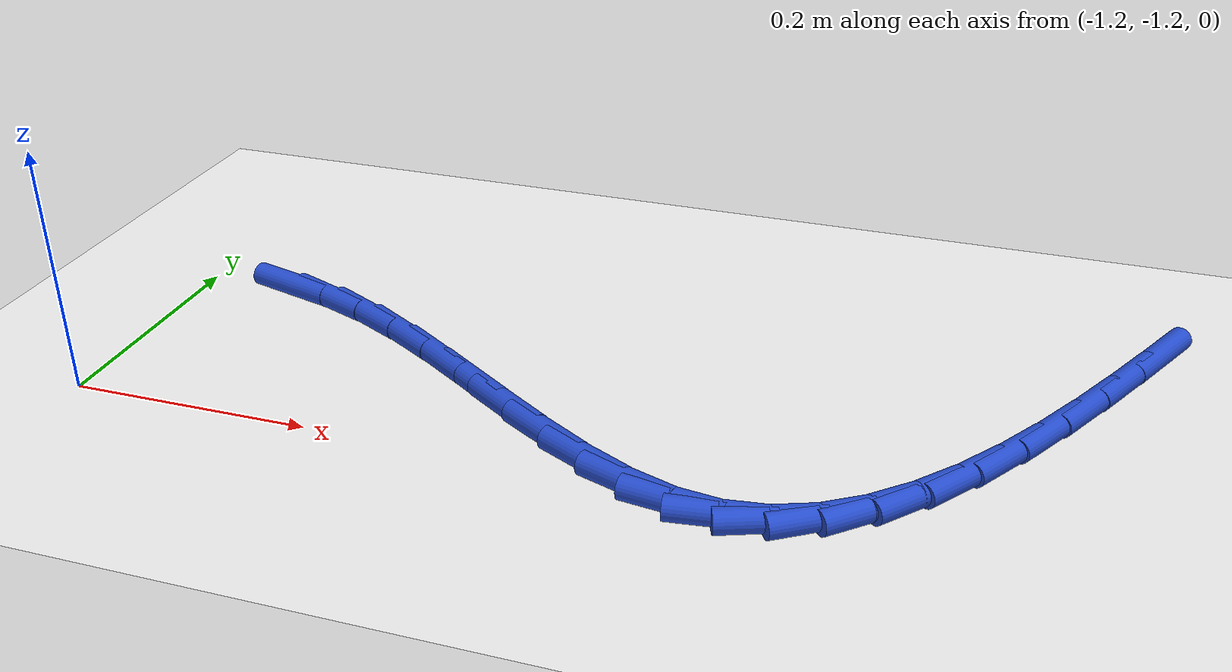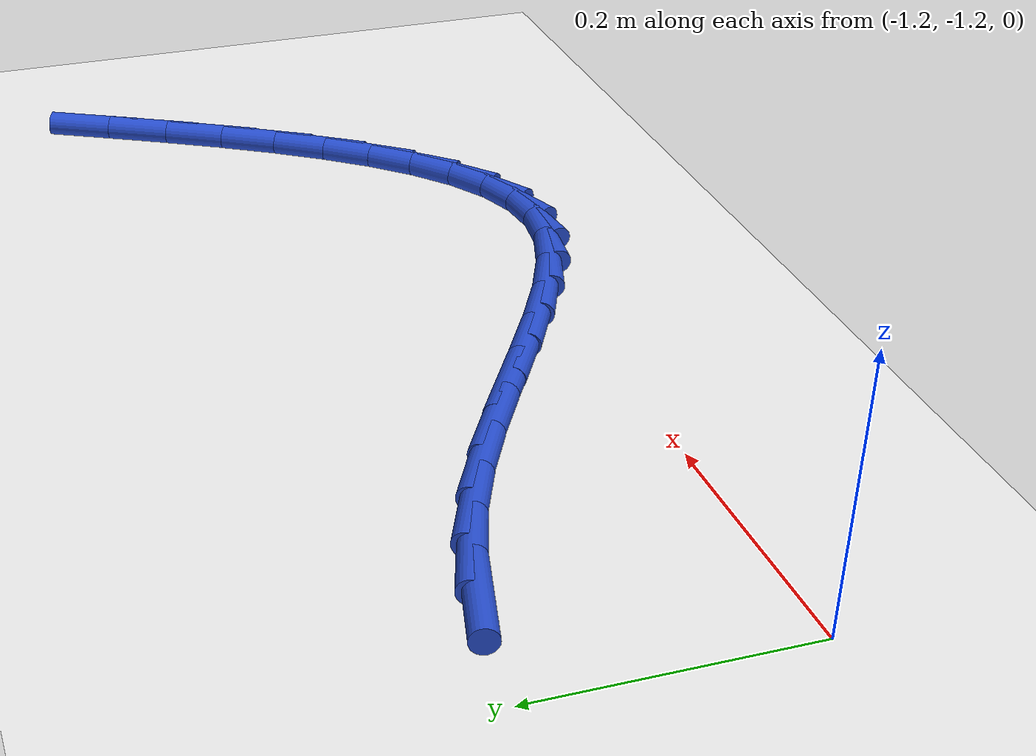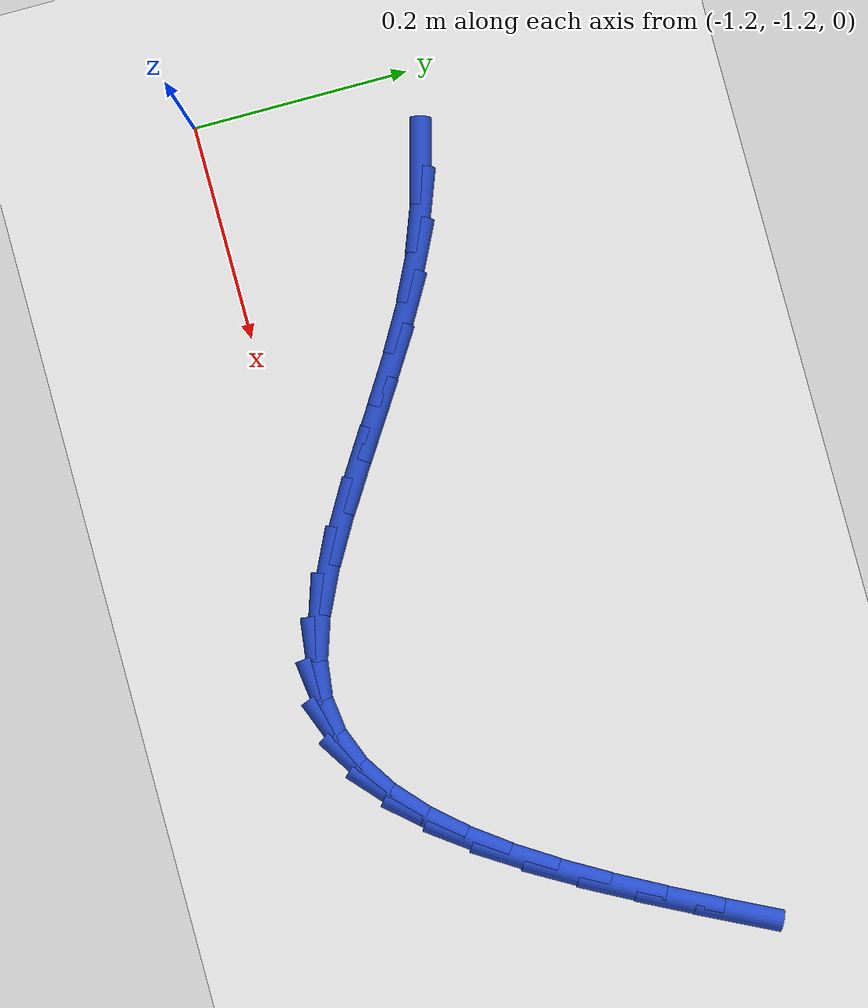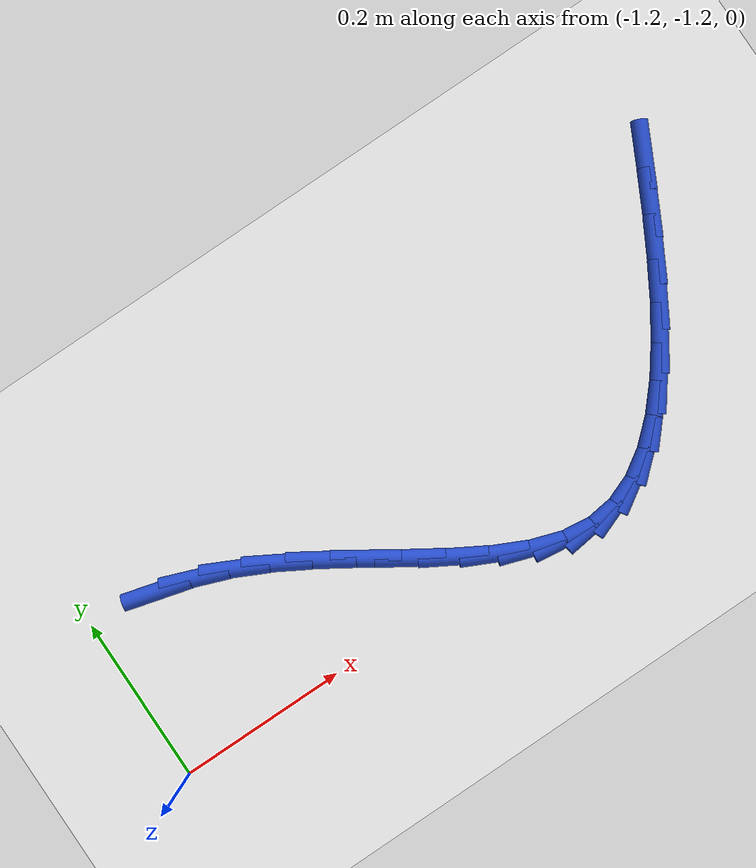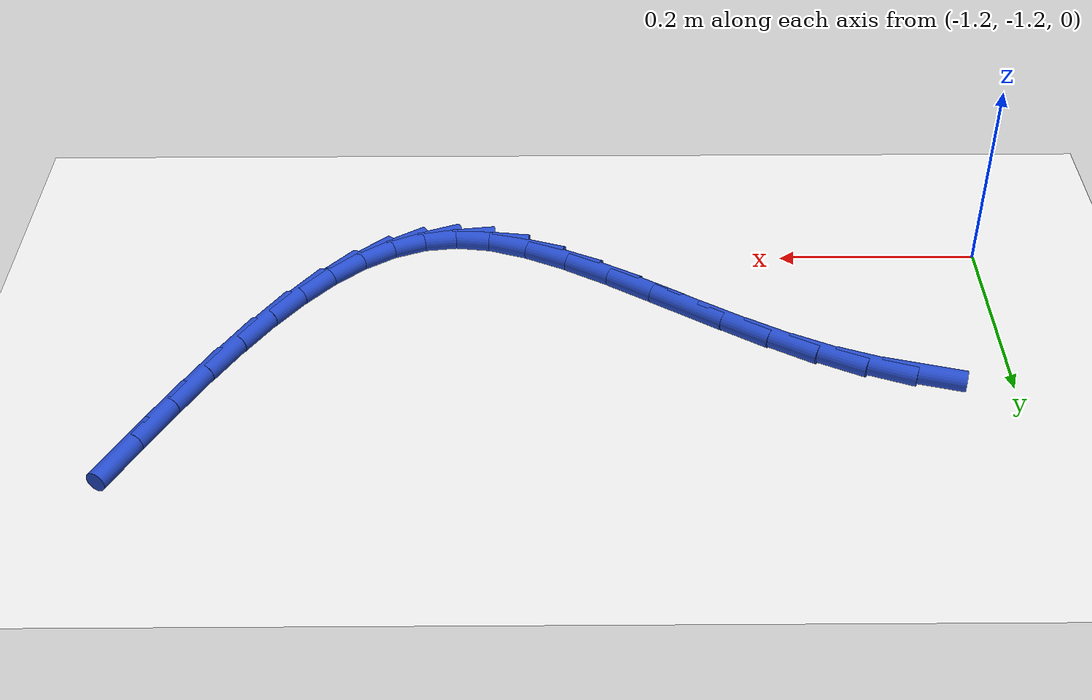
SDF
<sdf version="1.6">
 <world name="default">
  <model name="ground_plane">
   <static>1</static>
   <link name="link">
    <collision name="collision">
     <geometry><plane><normal>0 0 1</normal><size>100 100</size></plane></geometry>
     <surface><friction><ode><mu>100</mu><mu2>50</mu2></ode></friction></surface>
    </collision>
    <visual name="visual">
     <cast_shadows>0</cast_shadows>
     <geometry><plane><normal>0 0 1</normal><size>100 100</size></plane></geometry>
     <material>
      <script><uri>file://media/materials/scripts/gazebo.material</uri><name>Gazebo/WhiteGlow</name></script>
     </material>
    </visual>
   </link>
  </model>
  <model name="line">
   <link name="link_128">
    <pose>-1.11489778693988 -1.0090662943916175 0.01 0 1.57 -0.2633136754792188</pose>
    <collision name="collision">
     <geometry><cylinder><radius>0.01</radius><length>0.08</length></cylinder></geometry>
    </collision>
    <visual name="visual">
     <material>
      <script><name>Gazebo/Blue</name><uri>file://media/materials/scripts/gazebo.material</uri></script>
     </material>
     <geometry><cylinder><radius>0.01</radius><length>0.08</length></cylinder></geometry>
    </visual>
   </link>
   <link name="link_129">
    <pose>-1.0714470054815666 -1.0207794458673738 0.01 0 1.57 -0.3627959199982989</pose>
    <collision name="collision">
     <geometry><cylinder><radius>0.01</radius><length>0.08</length></cylinder></geometry>
    </collision>
    <visual name="visual">
     <material>
      <script><name>Gazebo/Blue</name><uri>file://media/materials/scripts/gazebo.material</uri></script>
     </material>
     <geometry><cylinder><radius>0.01</radius><length>0.08</length></cylinder></geometry>
    </visual>
   </link>
   <link name="link_130">
    <pose>-1.0281292295555295 -1.0372227985064488 0.01 0 1.57 -0.45818346676887056</pose>
    <collision name="collision">
     <geometry><cylinder><radius>0.01</radius><length>0.08</length></cylinder></geometry>
    </collision>
    <visual name="visual">
     <material>
      <script><name>Gazebo/Blue</name><uri>file://media/materials/scripts/gazebo.material</uri></script>
     </material>
     <geometry><cylinder><radius>0.01</radius><length>0.08</length></cylinder></geometry>
    </visual>
   </link>
   <link name="link_131">
    <pose>-0.9849203303949087 -1.0585329248063242 0.01 0 1.57 -0.526281071853238</pose>
    <collision name="collision">
     <geometry><cylinder><radius>0.01</radius><length>0.08</length></cylinder></geometry>
    </collision>
    <visual name="visual">
     <material>
      <script><name>Gazebo/Blue</name><uri>file://media/materials/scripts/gazebo.material</uri></script>
     </material>
     <geometry><cylinder><radius>0.01</radius><length>0.08</length></cylinder></geometry>
    </visual>
   </link>
   <link name="link_132">
    <pose>-0.9419699468743341 -1.0834841864497604 0.01 0 1.57 -0.5653119273435548</pose>
    <collision name="collision">
     <geometry><cylinder><radius>0.01</radius><length>0.08</length></cylinder></geometry>
    </collision>
    <visual name="visual">
     <material>
      <script><name>Gazebo/Blue</name><uri>file://media/materials/scripts/gazebo.material</uri></script>
     </material>
     <geometry><cylinder><radius>0.01</radius><length>0.08</length></cylinder></geometry>
    </visual>
   </link>
   <link name="link_133">
    <pose>-0.8994803302292012 -1.110438502813168 0.01 0 1.57 -0.5785892085736825</pose>
    <collision name="collision">
     <geometry><cylinder><radius>0.01</radius><length>0.08</length></cylinder></geometry>
    </collision>
    <visual name="visual">
     <material>
      <script><name>Gazebo/Blue</name><uri>file://media/materials/scripts/gazebo.material</uri></script>
     </material>
     <geometry><cylinder><radius>0.01</radius><length>0.08</length></cylinder></geometry>
    </visual>
   </link>
   <link name="link_134">
    <pose>-0.8576537432104552 -1.1377577029994927 0.01 0 1.57 -0.5663752598805192</pose>
    <collision name="collision">
     <geometry><cylinder><radius>0.01</radius><length>0.08</length></cylinder></geometry>
    </collision>
    <visual name="visual">
     <material>
      <script><name>Gazebo/Blue</name><uri>file://media/materials/scripts/gazebo.material</uri></script>
     </material>
     <geometry><cylinder><radius>0.01</radius><length>0.08</length></cylinder></geometry>
    </visual>
   </link>
   <link name="link_135">
    <pose>-0.8166924485690423 -1.1638036161116816 0.01 0 1.57 -0.5255103804943</pose>
    <collision name="collision">
     <geometry><cylinder><radius>0.01</radius><length>0.08</length></cylinder></geometry>
    </collision>
    <visual name="visual">
     <material>
      <script><name>Gazebo/Blue</name><uri>file://media/materials/scripts/gazebo.material</uri></script>
     </material>
     <geometry><cylinder><radius>0.01</radius><length>0.08</length></cylinder></geometry>
    </visual>
   </link>
   <link name="link_136">
    <pose>-0.776798709055908 -1.1869380712526802 0.01 0 1.57 -0.4484736867933053</pose>
    <collision name="collision">
     <geometry><cylinder><radius>0.01</radius><length>0.08</length></cylinder></geometry>
    </collision>
    <visual name="visual">
     <material>
      <script><name>Gazebo/Blue</name><uri>file://media/materials/scripts/gazebo.material</uri></script>
     </material>
     <geometry><cylinder><radius>0.01</radius><length>0.08</length></cylinder></geometry>
    </visual>
   </link>
   <link name="link_137">
    <pose>-0.7381747874219992 -1.2055228975254342 0.01 0 1.57 -0.32206737078411146</pose>
    <collision name="collision">
     <geometry><cylinder><radius>0.01</radius><length>0.08</length></cylinder></geometry>
    </collision>
    <visual name="visual">
     <material>
      <script><name>Gazebo/Blue</name><uri>file://media/materials/scripts/gazebo.material</uri></script>
     </material>
     <geometry><cylinder><radius>0.01</radius><length>0.08</length></cylinder></geometry>
    </visual>
   </link>
   <link name="link_138">
    <pose>-0.7010229464182614 -1.2179199240328902 0.01 0 1.57 -0.12822252647570132</pose>
    <collision name="collision">
     <geometry><cylinder><radius>0.01</radius><length>0.08</length></cylinder></geometry>
    </collision>
    <visual name="visual">
     <material>
      <script><name>Gazebo/Blue</name><uri>file://media/materials/scripts/gazebo.material</uri></script>
     </material>
     <geometry><cylinder><radius>0.01</radius><length>0.08</length></cylinder></geometry>
    </visual>
   </link>
   <link name="link_139">
    <pose>-0.6655449816058151 -1.2224940938347622 0.01 0 1.57 0.12390166913284448</pose>
    <collision name="collision">
     <geometry><cylinder><radius>0.01</radius><length>0.08</length></cylinder></geometry>
    </collision>
    <visual name="visual">
     <material>
      <script><name>Gazebo/Blue</name><uri>file://media/materials/scripts/gazebo.material</uri></script>
     </material>
     <geometry><cylinder><radius>0.01</radius><length>0.08</length></cylinder></geometry>
    </visual>
   </link>
   <link name="link_140">
    <pose>-0.631839751223554 -1.2182964573374695 0.01 0 1.57 0.3683107205452084</pose>
    <collision name="collision">
     <geometry><cylinder><radius>0.01</radius><length>0.08</length></cylinder></geometry>
    </collision>
    <visual name="visual">
     <material>
      <script><name>Gazebo/Blue</name><uri>file://media/materials/scripts/gazebo.material</uri></script>
     </material>
     <geometry><cylinder><radius>0.01</radius><length>0.08</length></cylinder></geometry>
    </visual>
   </link>
   <link name="link_141">
    <pose>-0.5997745048035286 -1.205921804690083 0.01 0 1.57 0.5732135256513703</pose>
    <collision name="collision">
     <geometry><cylinder><radius>0.01</radius><length>0.08</length></cylinder></geometry>
    </collision>
    <visual name="visual">
     <material>
      <script><name>Gazebo/Blue</name><uri>file://media/materials/scripts/gazebo.material</uri></script>
     </material>
     <geometry><cylinder><radius>0.01</radius><length>0.08</length></cylinder></geometry>
    </visual>
   </link>
   <link name="link_142">
    <pose>-0.5691848505099811 -1.1861758250085779 0.01 0 1.57 0.7320788518152492</pose>
    <collision name="collision">
     <geometry><cylinder><radius>0.01</radius><length>0.08</length></cylinder></geometry>
    </collision>
    <visual name="visual">
     <material>
      <script><name>Gazebo/Blue</name><uri>file://media/materials/scripts/gazebo.material</uri></script>
     </material>
     <geometry><cylinder><radius>0.01</radius><length>0.08</length></cylinder></geometry>
    </visual>
   </link>
   <link name="link_143">
    <pose>-0.539906396507155 -1.159864207408929 0.01 0 1.57 0.850748672173819</pose>
    <collision name="collision">
     <geometry><cylinder><radius>0.01</radius><length>0.08</length></cylinder></geometry>
    </collision>
    <visual name="visual">
     <material>
      <script><name>Gazebo/Blue</name><uri>file://media/materials/scripts/gazebo.material</uri></script>
     </material>
     <geometry><cylinder><radius>0.01</radius><length>0.08</length></cylinder></geometry>
    </visual>
   </link>
   <link name="link_144">
    <pose>-0.5117747509592916 -1.1277926410071104 0.01 0 1.57 0.9381009478733281</pose>
    <collision name="collision">
     <geometry><cylinder><radius>0.01</radius><length>0.08</length></cylinder></geometry>
    </collision>
    <visual name="visual">
     <material>
      <script><name>Gazebo/Blue</name><uri>file://media/materials/scripts/gazebo.material</uri></script>
     </material>
     <geometry><cylinder><radius>0.01</radius><length>0.08</length></cylinder></geometry>
    </visual>
   </link>
   <link name="link_145">
    <pose>-0.484625522030633 -1.090766814919096 0.01 0 1.57 1.0018348674355706</pose>
    <collision name="collision">
     <geometry><cylinder><radius>0.01</radius><length>0.08</length></cylinder></geometry>
    </collision>
    <visual name="visual">
     <material>
      <script><name>Gazebo/Blue</name><uri>file://media/materials/scripts/gazebo.material</uri></script>
     </material>
     <geometry><cylinder><radius>0.01</radius><length>0.08</length></cylinder></geometry>
    </visual>
   </link>
   <link name="link_146">
    <pose>-0.45829431788542163 -1.0495924182608605 0.01 0 1.57 1.0476102640758869</pose>
    <collision name="collision">
     <geometry><cylinder><radius>0.01</radius><length>0.08</length></cylinder></geometry>
    </collision>
    <visual name="visual">
     <material>
      <script><name>Gazebo/Blue</name><uri>file://media/materials/scripts/gazebo.material</uri></script>
     </material>
     <geometry><cylinder><radius>0.01</radius><length>0.08</length></cylinder></geometry>
    </visual>
   </link>
   <link name="link_147">
    <pose>-0.4326167466878991 -1.0050751401483773 0.01 0 1.57 1.079307918969935</pose>
    <collision name="collision">
     <geometry><cylinder><radius>0.01</radius><length>0.08</length></cylinder></geometry>
    </collision>
    <visual name="visual">
     <material>
      <script><name>Gazebo/Blue</name><uri>file://media/materials/scripts/gazebo.material</uri></script>
     </material>
     <geometry><cylinder><radius>0.01</radius><length>0.08</length></cylinder></geometry>
    </visual>
   </link>
   <link name="link_148">
    <pose>-0.4074284166023089 -0.958020669697623 0.01 0 1.57 1.0994632836585851</pose>
    <collision name="collision">
     <geometry><cylinder><radius>0.01</radius><length>0.08</length></cylinder></geometry>
    </collision>
    <visual name="visual">
     <material>
      <script><name>Gazebo/Blue</name><uri>file://media/materials/scripts/gazebo.material</uri></script>
     </material>
     <geometry><cylinder><radius>0.01</radius><length>0.08</length></cylinder></geometry>
    </visual>
   </link>
   <link name="link_149">
    <pose>-0.38256493579289236 -0.9092346960245705 0.01 0 1.57 1.1096118516082971</pose>
    <collision name="collision">
     <geometry><cylinder><radius>0.01</radius><length>0.08</length></cylinder></geometry>
    </collision>
    <visual name="visual">
     <material>
      <script><name>Gazebo/Blue</name><uri>file://media/materials/scripts/gazebo.material</uri></script>
     </material>
     <geometry><cylinder><radius>0.01</radius><length>0.08</length></cylinder></geometry>
    </visual>
   </link>
  </model>
 </world>
</sdf>
